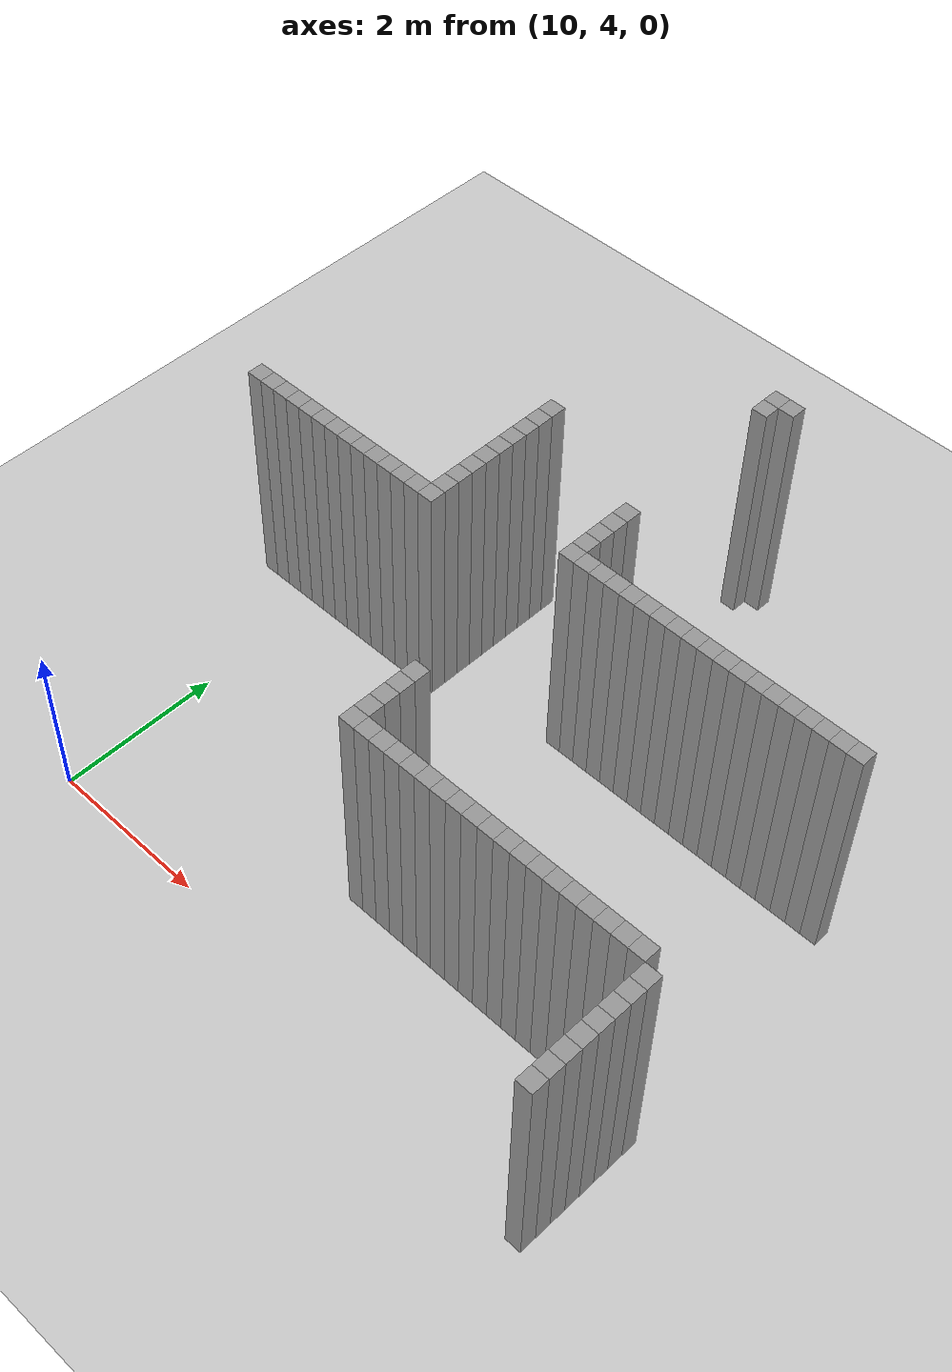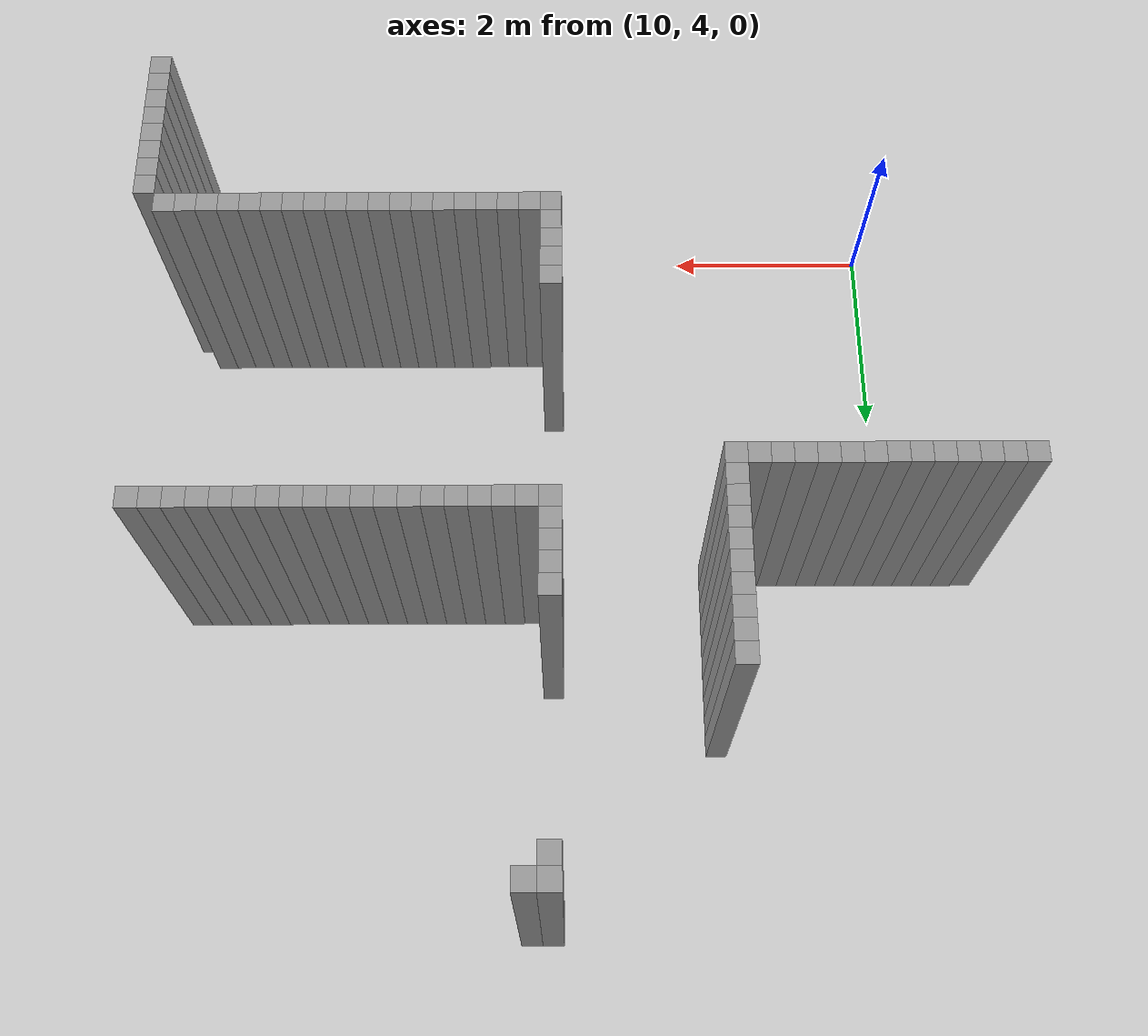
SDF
<sdf version="1.7">
 <world name="default">
  <model name="ground_plane">
   <static>1</static>
   <link name="link">
    <collision name="collision">
     <geometry><plane><normal>0 0 1</normal><size>100 100</size></plane></geometry>
     <surface>
      <contact><collide_bitmask>65535</collide_bitmask></contact>
      <friction><ode><mu>100</mu><mu2>50</mu2></ode></friction>
     </surface>
    </collision>
    <visual name="visual">
     <cast_shadows>0</cast_shadows>
     <geometry><plane><normal>0 0 1</normal><size>100 100</size></plane></geometry>
     <material>
      <script><uri>file://media/materials/scripts/gazebo.material</uri><name>Gazebo/Grey</name></script>
     </material>
    </visual>
   </link>
  </model>
  <model name="05222">
   <pose>-1 -1 0 0 -0 0</pose>
   <link name="Wall_288">
    <collision name="Wall_288_Collision">
     <geometry><box><size>0.2 0.2 3</size></box></geometry>
     <pose>0 0 1.5 0 -0 0</pose>
    </collision>
    <visual name="Wall_288_Visual">
     <pose>0 0 1.5 0 -0 0</pose>
     <geometry><box><size>0.2 0.2 3</size></box></geometry>
     <material>
      <script><uri>file://media/materials/scripts/gazebo.material</uri><name>Gazebo/Grey</name></script>
      <ambient>1 1 1 1</ambient>
     </material>
     <meta><layer>0</layer></meta>
    </visual>
    <pose>18.2 4.6000000000000005 0 0 -0 0</pose>
   </link>
   <link name="Wall_291">
    <collision name="Wall_291_Collision">
     <geometry><box><size>0.2 0.2 3</size></box></geometry>
     <pose>0 0 1.5 0 -0 0</pose>
    </collision>
    <visual name="Wall_291_Visual">
     <pose>0 0 1.5 0 -0 0</pose>
     <geometry><box><size>0.2 0.2 3</size></box></geometry>
     <material>
      <script><uri>file://media/materials/scripts/gazebo.material</uri><name>Gazebo/Grey</name></script>
      <ambient>1 1 1 1</ambient>
     </material>
     <meta><layer>0</layer></meta>
    </visual>
    <pose>18.2 4.800000000000001 0 0 -0 0</pose>
   </link>
   <link name="Wall_294">
    <collision name="Wall_294_Collision">
     <geometry><box><size>0.2 0.2 3</size></box></geometry>
     <pose>0 0 1.5 0 -0 0</pose>
    </collision>
    <visual name="Wall_294_Visual">
     <pose>0 0 1.5 0 -0 0</pose>
     <geometry><box><size>0.2 0.2 3</size></box></geometry>
     <material>
      <script><uri>file://media/materials/scripts/gazebo.material</uri><name>Gazebo/Grey</name></script>
      <ambient>1 1 1 1</ambient>
     </material>
     <meta><layer>0</layer></meta>
    </visual>
    <pose>18.2 5.0 0 0 -0 0</pose>
   </link>
   <link name="Wall_297">
    <collision name="Wall_297_Collision">
     <geometry><box><size>0.2 0.2 3</size></box></geometry>
     <pose>0 0 1.5 0 -0 0</pose>
    </collision>
    <visual name="Wall_297_Visual">
     <pose>0 0 1.5 0 -0 0</pose>
     <geometry><box><size>0.2 0.2 3</size></box></geometry>
     <material>
      <script><uri>file://media/materials/scripts/gazebo.material</uri><name>Gazebo/Grey</name></script>
      <ambient>1 1 1 1</ambient>
     </material>
     <meta><layer>0</layer></meta>
    </visual>
    <pose>18.2 5.2 0 0 -0 0</pose>
   </link>
   <link name="Wall_300">
    <collision name="Wall_300_Collision">
     <geometry><box><size>0.2 0.2 3</size></box></geometry>
     <pose>0 0 1.5 0 -0 0</pose>
    </collision>
    <visual name="Wall_300_Visual">
     <pose>0 0 1.5 0 -0 0</pose>
     <geometry><box><size>0.2 0.2 3</size></box></geometry>
     <material>
      <script><uri>file://media/materials/scripts/gazebo.material</uri><name>Gazebo/Grey</name></script>
      <ambient>1 1 1 1</ambient>
     </material>
     <meta><layer>0</layer></meta>
    </visual>
    <pose>18.2 5.4 0 0 -0 0</pose>
   </link>
   <link name="Wall_302">
    <collision name="Wall_302_Collision">
     <geometry><box><size>0.2 0.2 3</size></box></geometry>
     <pose>0 0 1.5 0 -0 0</pose>
    </collision>
    <visual name="Wall_302_Visual">
     <pose>0 0 1.5 0 -0 0</pose>
     <geometry><box><size>0.2 0.2 3</size></box></geometry>
     <material>
      <script><uri>file://media/materials/scripts/gazebo.material</uri><name>Gazebo/Grey</name></script>
      <ambient>1 1 1 1</ambient>
     </material>
     <meta><layer>0</layer></meta>
    </visual>
    <pose>18.2 5.6000000000000005 0 0 -0 0</pose>
   </link>
   <link name="Wall_304">
    <collision name="Wall_304_Collision">
     <geometry><box><size>0.2 0.2 3</size></box></geometry>
     <pose>0 0 1.5 0 -0 0</pose>
    </collision>
    <visual name="Wall_304_Visual">
     <pose>0 0 1.5 0 -0 0</pose>
     <geometry><box><size>0.2 0.2 3</size></box></geometry>
     <material>
      <script><uri>file://media/materials/scripts/gazebo.material</uri><name>Gazebo/Grey</name></script>
      <ambient>1 1 1 1</ambient>
     </material>
     <meta><layer>0</layer></meta>
    </visual>
    <pose>18.2 5.800000000000001 0 0 -0 0</pose>
   </link>
   <link name="Wall_306">
    <collision name="Wall_306_Collision">
     <geometry><box><size>0.2 0.2 3</size></box></geometry>
     <pose>0 0 1.5 0 -0 0</pose>
    </collision>
    <visual name="Wall_306_Visual">
     <pose>0 0 1.5 0 -0 0</pose>
     <geometry><box><size>0.2 0.2 3</size></box></geometry>
     <material>
      <script><uri>file://media/materials/scripts/gazebo.material</uri><name>Gazebo/Grey</name></script>
      <ambient>1 1 1 1</ambient>
     </material>
     <meta><layer>0</layer></meta>
    </visual>
    <pose>18.2 6.0 0 0 -0 0</pose>
   </link>
   <link name="Wall_309">
    <collision name="Wall_309_Collision">
     <geometry><box><size>0.2 0.2 3</size></box></geometry>
     <pose>0 0 1.5 0 -0 0</pose>
    </collision>
    <visual name="Wall_309_Visual">
     <pose>0 0 1.5 0 -0 0</pose>
     <geometry><box><size>0.2 0.2 3</size></box></geometry>
     <material>
      <script><uri>file://media/materials/scripts/gazebo.material</uri><name>Gazebo/Grey</name></script>
      <ambient>1 1 1 1</ambient>
     </material>
     <meta><layer>0</layer></meta>
    </visual>
    <pose>14.4 6.2 0 0 -0 0</pose>
   </link>
   <link name="Wall_310">
    <collision name="Wall_310_Collision">
     <geometry><box><size>0.2 0.2 3</size></box></geometry>
     <pose>0 0 1.5 0 -0 0</pose>
    </collision>
    <visual name="Wall_310_Visual">
     <pose>0 0 1.5 0 -0 0</pose>
     <geometry><box><size>0.2 0.2 3</size></box></geometry>
     <material>
      <script><uri>file://media/materials/scripts/gazebo.material</uri><name>Gazebo/Grey</name></script>
      <ambient>1 1 1 1</ambient>
     </material>
     <meta><layer>0</layer></meta>
    </visual>
    <pose>14.600000000000001 6.2 0 0 -0 0</pose>
   </link>
   <link name="Wall_311">
    <collision name="Wall_311_Collision">
     <geometry><box><size>0.2 0.2 3</size></box></geometry>
     <pose>0 0 1.5 0 -0 0</pose>
    </collision>
    <visual name="Wall_311_Visual">
     <pose>0 0 1.5 0 -0 0</pose>
     <geometry><box><size>0.2 0.2 3</size></box></geometry>
     <material>
      <script><uri>file://media/materials/scripts/gazebo.material</uri><name>Gazebo/Grey</name></script>
      <ambient>1 1 1 1</ambient>
     </material>
     <meta><layer>0</layer></meta>
    </visual>
    <pose>14.8 6.2 0 0 -0 0</pose>
   </link>
   <link name="Wall_312">
    <collision name="Wall_312_Collision">
     <geometry><box><size>0.2 0.2 3</size></box></geometry>
     <pose>0 0 1.5 0 -0 0</pose>
    </collision>
    <visual name="Wall_312_Visual">
     <pose>0 0 1.5 0 -0 0</pose>
     <geometry><box><size>0.2 0.2 3</size></box></geometry>
     <material>
      <script><uri>file://media/materials/scripts/gazebo.material</uri><name>Gazebo/Grey</name></script>
      <ambient>1 1 1 1</ambient>
     </material>
     <meta><layer>0</layer></meta>
    </visual>
    <pose>15.0 6.2 0 0 -0 0</pose>
   </link>
   <link name="Wall_313">
    <collision name="Wall_313_Collision">
     <geometry><box><size>0.2 0.2 3</size></box></geometry>
     <pose>0 0 1.5 0 -0 0</pose>
    </collision>
    <visual name="Wall_313_Visual">
     <pose>0 0 1.5 0 -0 0</pose>
     <geometry><box><size>0.2 0.2 3</size></box></geometry>
     <material>
      <script><uri>file://media/materials/scripts/gazebo.material</uri><name>Gazebo/Grey</name></script>
      <ambient>1 1 1 1</ambient>
     </material>
     <meta><layer>0</layer></meta>
    </visual>
    <pose>15.200000000000001 6.2 0 0 -0 0</pose>
   </link>
   <link name="Wall_314">
    <collision name="Wall_314_Collision">
     <geometry><box><size>0.2 0.2 3</size></box></geometry>
     <pose>0 0 1.5 0 -0 0</pose>
    </collision>
    <visual name="Wall_314_Visual">
     <pose>0 0 1.5 0 -0 0</pose>
     <geometry><box><size>0.2 0.2 3</size></box></geometry>
     <material>
      <script><uri>file://media/materials/scripts/gazebo.material</uri><name>Gazebo/Grey</name></script>
      <ambient>1 1 1 1</ambient>
     </material>
     <meta><layer>0</layer></meta>
    </visual>
    <pose>15.4 6.2 0 0 -0 0</pose>
   </link>
   <link name="Wall_315">
    <collision name="Wall_315_Collision">
     <geometry><box><size>0.2 0.2 3</size></box></geometry>
     <pose>0 0 1.5 0 -0 0</pose>
    </collision>
    <visual name="Wall_315_Visual">
     <pose>0 0 1.5 0 -0 0</pose>
     <geometry><box><size>0.2 0.2 3</size></box></geometry>
     <material>
      <script><uri>file://media/materials/scripts/gazebo.material</uri><name>Gazebo/Grey</name></script>
      <ambient>1 1 1 1</ambient>
     </material>
     <meta><layer>0</layer></meta>
    </visual>
    <pose>15.600000000000001 6.2 0 0 -0 0</pose>
   </link>
   <link name="Wall_316">
    <collision name="Wall_316_Collision">
     <geometry><box><size>0.2 0.2 3</size></box></geometry>
     <pose>0 0 1.5 0 -0 0</pose>
    </collision>
    <visual name="Wall_316_Visual">
     <pose>0 0 1.5 0 -0 0</pose>
     <geometry><box><size>0.2 0.2 3</size></box></geometry>
     <material>
      <script><uri>file://media/materials/scripts/gazebo.material</uri><name>Gazebo/Grey</name></script>
      <ambient>1 1 1 1</ambient>
     </material>
     <meta><layer>0</layer></meta>
    </visual>
    <pose>15.8 6.2 0 0 -0 0</pose>
   </link>
   <link name="Wall_317">
    <collision name="Wall_317_Collision">
     <geometry><box><size>0.2 0.2 3</size></box></geometry>
     <pose>0 0 1.5 0 -0 0</pose>
    </collision>
    <visual name="Wall_317_Visual">
     <pose>0 0 1.5 0 -0 0</pose>
     <geometry><box><size>0.2 0.2 3</size></box></geometry>
     <material>
      <script><uri>file://media/materials/scripts/gazebo.material</uri><name>Gazebo/Grey</name></script>
      <ambient>1 1 1 1</ambient>
     </material>
     <meta><layer>0</layer></meta>
    </visual>
    <pose>16.0 6.2 0 0 -0 0</pose>
   </link>
   <link name="Wall_318">
    <collision name="Wall_318_Collision">
     <geometry><box><size>0.2 0.2 3</size></box></geometry>
     <pose>0 0 1.5 0 -0 0</pose>
    </collision>
    <visual name="Wall_318_Visual">
     <pose>0 0 1.5 0 -0 0</pose>
     <geometry><box><size>0.2 0.2 3</size></box></geometry>
     <material>
      <script><uri>file://media/materials/scripts/gazebo.material</uri><name>Gazebo/Grey</name></script>
      <ambient>1 1 1 1</ambient>
     </material>
     <meta><layer>0</layer></meta>
    </visual>
    <pose>16.2 6.2 0 0 -0 0</pose>
   </link>
   <link name="Wall_319">
    <collision name="Wall_319_Collision">
     <geometry><box><size>0.2 0.2 3</size></box></geometry>
     <pose>0 0 1.5 0 -0 0</pose>
    </collision>
    <visual name="Wall_319_Visual">
     <pose>0 0 1.5 0 -0 0</pose>
     <geometry><box><size>0.2 0.2 3</size></box></geometry>
     <material>
      <script><uri>file://media/materials/scripts/gazebo.material</uri><name>Gazebo/Grey</name></script>
      <ambient>1 1 1 1</ambient>
     </material>
     <meta><layer>0</layer></meta>
    </visual>
    <pose>16.400000000000002 6.2 0 0 -0 0</pose>
   </link>
   <link name="Wall_320">
    <collision name="Wall_320_Collision">
     <geometry><box><size>0.2 0.2 3</size></box></geometry>
     <pose>0 0 1.5 0 -0 0</pose>
    </collision>
    <visual name="Wall_320_Visual">
     <pose>0 0 1.5 0 -0 0</pose>
     <geometry><box><size>0.2 0.2 3</size></box></geometry>
     <material>
      <script><uri>file://media/materials/scripts/gazebo.material</uri><name>Gazebo/Grey</name></script>
      <ambient>1 1 1 1</ambient>
     </material>
     <meta><layer>0</layer></meta>
    </visual>
    <pose>16.6 6.2 0 0 -0 0</pose>
   </link>
   <link name="Wall_321">
    <collision name="Wall_321_Collision">
     <geometry><box><size>0.2 0.2 3</size></box></geometry>
     <pose>0 0 1.5 0 -0 0</pose>
    </collision>
    <visual name="Wall_321_Visual">
     <pose>0 0 1.5 0 -0 0</pose>
     <geometry><box><size>0.2 0.2 3</size></box></geometry>
     <material>
      <script><uri>file://media/materials/scripts/gazebo.material</uri><name>Gazebo/Grey</name></script>
      <ambient>1 1 1 1</ambient>
     </material>
     <meta><layer>0</layer></meta>
    </visual>
    <pose>16.8 6.2 0 0 -0 0</pose>
   </link>
   <link name="Wall_322">
    <collision name="Wall_322_Collision">
     <geometry><box><size>0.2 0.2 3</size></box></geometry>
     <pose>0 0 1.5 0 -0 0</pose>
    </collision>
    <visual name="Wall_322_Visual">
     <pose>0 0 1.5 0 -0 0</pose>
     <geometry><box><size>0.2 0.2 3</size></box></geometry>
     <material>
      <script><uri>file://media/materials/scripts/gazebo.material</uri><name>Gazebo/Grey</name></script>
      <ambient>1 1 1 1</ambient>
     </material>
     <meta><layer>0</layer></meta>
    </visual>
    <pose>17.0 6.2 0 0 -0 0</pose>
   </link>
   <link name="Wall_323">
    <collision name="Wall_323_Collision">
     <geometry><box><size>0.2 0.2 3</size></box></geometry>
     <pose>0 0 1.5 0 -0 0</pose>
    </collision>
    <visual name="Wall_323_Visual">
     <pose>0 0 1.5 0 -0 0</pose>
     <geometry><box><size>0.2 0.2 3</size></box></geometry>
     <material>
      <script><uri>file://media/materials/scripts/gazebo.material</uri><name>Gazebo/Grey</name></script>
      <ambient>1 1 1 1</ambient>
     </material>
     <meta><layer>0</layer></meta>
    </visual>
    <pose>17.2 6.2 0 0 -0 0</pose>
   </link>
   <link name="Wall_324">
    <collision name="Wall_324_Collision">
     <geometry><box><size>0.2 0.2 3</size></box></geometry>
     <pose>0 0 1.5 0 -0 0</pose>
    </collision>
    <visual name="Wall_324_Visual">
     <pose>0 0 1.5 0 -0 0</pose>
     <geometry><box><size>0.2 0.2 3</size></box></geometry>
     <material>
      <script><uri>file://media/materials/scripts/gazebo.material</uri><name>Gazebo/Grey</name></script>
      <ambient>1 1 1 1</ambient>
     </material>
     <meta><layer>0</layer></meta>
    </visual>
    <pose>17.400000000000002 6.2 0 0 -0 0</pose>
   </link>
   <link name="Wall_325">
    <collision name="Wall_325_Collision">
     <geometry><box><size>0.2 0.2 3</size></box></geometry>
     <pose>0 0 1.5 0 -0 0</pose>
    </collision>
    <visual name="Wall_325_Visual">
     <pose>0 0 1.5 0 -0 0</pose>
     <geometry><box><size>0.2 0.2 3</size></box></geometry>
     <material>
      <script><uri>file://media/materials/scripts/gazebo.material</uri><name>Gazebo/Grey</name></script>
      <ambient>1 1 1 1</ambient>
     </material>
     <meta><layer>0</layer></meta>
    </visual>
    <pose>17.6 6.2 0 0 -0 0</pose>
   </link>
   <link name="Wall_326">
    <collision name="Wall_326_Collision">
     <geometry><box><size>0.2 0.2 3</size></box></geometry>
     <pose>0 0 1.5 0 -0 0</pose>
    </collision>
    <visual name="Wall_326_Visual">
     <pose>0 0 1.5 0 -0 0</pose>
     <geometry><box><size>0.2 0.2 3</size></box></geometry>
     <material>
      <script><uri>file://media/materials/scripts/gazebo.material</uri><name>Gazebo/Grey</name></script>
      <ambient>1 1 1 1</ambient>
     </material>
     <meta><layer>0</layer></meta>
    </visual>
    <pose>17.8 6.2 0 0 -0 0</pose>
   </link>
   <link name="Wall_327">
    <collision name="Wall_327_Collision">
     <geometry><box><size>0.2 0.2 3</size></box></geometry>
     <pose>0 0 1.5 0 -0 0</pose>
    </collision>
    <visual name="Wall_327_Visual">
     <pose>0 0 1.5 0 -0 0</pose>
     <geometry><box><size>0.2 0.2 3</size></box></geometry>
     <material>
      <script><uri>file://media/materials/scripts/gazebo.material</uri><name>Gazebo/Grey</name></script>
      <ambient>1 1 1 1</ambient>
     </material>
     <meta><layer>0</layer></meta>
    </visual>
    <pose>18.0 6.2 0 0 -0 0</pose>
   </link>
   <link name="Wall_331">
    <collision name="Wall_331_Collision">
     <geometry><box><size>0.2 0.2 3</size></box></geometry>
     <pose>0 0 1.5 0 -0 0</pose>
    </collision>
    <visual name="Wall_331_Visual">
     <pose>0 0 1.5 0 -0 0</pose>
     <geometry><box><size>0.2 0.2 3</size></box></geometry>
     <material>
      <script><uri>file://media/materials/scripts/gazebo.material</uri><name>Gazebo/Grey</name></script>
      <ambient>1 1 1 1</ambient>
     </material>
     <meta><layer>0</layer></meta>
    </visual>
    <pose>14.4 6.4 0 0 -0 0</pose>
   </link>
   <link name="Wall_335">
    <collision name="Wall_335_Collision">
     <geometry><box><size>0.2 0.2 3</size></box></geometry>
     <pose>0 0 1.5 0 -0 0</pose>
    </collision>
    <visual name="Wall_335_Visual">
     <pose>0 0 1.5 0 -0 0</pose>
     <geometry><box><size>0.2 0.2 3</size></box></geometry>
     <material>
      <script><uri>file://media/materials/scripts/gazebo.material</uri><name>Gazebo/Grey</name></script>
      <ambient>1 1 1 1</ambient>
     </material>
     <meta><layer>0</layer></meta>
    </visual>
    <pose>14.4 6.6000000000000005 0 0 -0 0</pose>
   </link>
   <link name="Wall_339">
    <collision name="Wall_339_Collision">
     <geometry><box><size>0.2 0.2 3</size></box></geometry>
     <pose>0 0 1.5 0 -0 0</pose>
    </collision>
    <visual name="Wall_339_Visual">
     <pose>0 0 1.5 0 -0 0</pose>
     <geometry><box><size>0.2 0.2 3</size></box></geometry>
     <material>
      <script><uri>file://media/materials/scripts/gazebo.material</uri><name>Gazebo/Grey</name></script>
      <ambient>1 1 1 1</ambient>
     </material>
     <meta><layer>0</layer></meta>
    </visual>
    <pose>14.4 6.800000000000001 0 0 -0 0</pose>
   </link>
   <link name="Wall_344">
    <collision name="Wall_344_Collision">
     <geometry><box><size>0.2 0.2 3</size></box></geometry>
     <pose>0 0 1.5 0 -0 0</pose>
    </collision>
    <visual name="Wall_344_Visual">
     <pose>0 0 1.5 0 -0 0</pose>
     <geometry><box><size>0.2 0.2 3</size></box></geometry>
     <material>
      <script><uri>file://media/materials/scripts/gazebo.material</uri><name>Gazebo/Grey</name></script>
      <ambient>1 1 1 1</ambient>
     </material>
     <meta><layer>0</layer></meta>
    </visual>
    <pose>14.4 7.0 0 0 -0 0</pose>
   </link>
   <link name="Wall_404">
    <collision name="Wall_404_Collision">
     <geometry><box><size>0.2 0.2 3</size></box></geometry>
     <pose>0 0 1.5 0 -0 0</pose>
    </collision>
    <visual name="Wall_404_Visual">
     <pose>0 0 1.5 0 -0 0</pose>
     <geometry><box><size>0.2 0.2 3</size></box></geometry>
     <material>
      <script><uri>file://media/materials/scripts/gazebo.material</uri><name>Gazebo/Grey</name></script>
      <ambient>1 1 1 1</ambient>
     </material>
     <meta><layer>0</layer></meta>
    </visual>
    <pose>10.200000000000001 8.8 0 0 -0 0</pose>
   </link>
   <link name="Wall_405">
    <collision name="Wall_405_Collision">
     <geometry><box><size>0.2 0.2 3</size></box></geometry>
     <pose>0 0 1.5 0 -0 0</pose>
    </collision>
    <visual name="Wall_405_Visual">
     <pose>0 0 1.5 0 -0 0</pose>
     <geometry><box><size>0.2 0.2 3</size></box></geometry>
     <material>
      <script><uri>file://media/materials/scripts/gazebo.material</uri><name>Gazebo/Grey</name></script>
      <ambient>1 1 1 1</ambient>
     </material>
     <meta><layer>0</layer></meta>
    </visual>
    <pose>10.4 8.8 0 0 -0 0</pose>
   </link>
   <link name="Wall_406">
    <collision name="Wall_406_Collision">
     <geometry><box><size>0.2 0.2 3</size></box></geometry>
     <pose>0 0 1.5 0 -0 0</pose>
    </collision>
    <visual name="Wall_406_Visual">
     <pose>0 0 1.5 0 -0 0</pose>
     <geometry><box><size>0.2 0.2 3</size></box></geometry>
     <material>
      <script><uri>file://media/materials/scripts/gazebo.material</uri><name>Gazebo/Grey</name></script>
      <ambient>1 1 1 1</ambient>
     </material>
     <meta><layer>0</layer></meta>
    </visual>
    <pose>10.600000000000001 8.8 0 0 -0 0</pose>
   </link>
   <link name="Wall_407">
    <collision name="Wall_407_Collision">
     <geometry><box><size>0.2 0.2 3</size></box></geometry>
     <pose>0 0 1.5 0 -0 0</pose>
    </collision>
    <visual name="Wall_407_Visual">
     <pose>0 0 1.5 0 -0 0</pose>
     <geometry><box><size>0.2 0.2 3</size></box></geometry>
     <material>
      <script><uri>file://media/materials/scripts/gazebo.material</uri><name>Gazebo/Grey</name></script>
      <ambient>1 1 1 1</ambient>
     </material>
     <meta><layer>0</layer></meta>
    </visual>
    <pose>10.8 8.8 0 0 -0 0</pose>
   </link>
   <link name="Wall_408">
    <collision name="Wall_408_Collision">
     <geometry><box><size>0.2 0.2 3</size></box></geometry>
     <pose>0 0 1.5 0 -0 0</pose>
    </collision>
    <visual name="Wall_408_Visual">
     <pose>0 0 1.5 0 -0 0</pose>
     <geometry><box><size>0.2 0.2 3</size></box></geometry>
     <material>
      <script><uri>file://media/materials/scripts/gazebo.material</uri><name>Gazebo/Grey</name></script>
      <ambient>1 1 1 1</ambient>
     </material>
     <meta><layer>0</layer></meta>
    </visual>
    <pose>11.0 8.8 0 0 -0 0</pose>
   </link>
   <link name="Wall_409">
    <collision name="Wall_409_Collision">
     <geometry><box><size>0.2 0.2 3</size></box></geometry>
     <pose>0 0 1.5 0 -0 0</pose>
    </collision>
    <visual name="Wall_409_Visual">
     <pose>0 0 1.5 0 -0 0</pose>
     <geometry><box><size>0.2 0.2 3</size></box></geometry>
     <material>
      <script><uri>file://media/materials/scripts/gazebo.material</uri><name>Gazebo/Grey</name></script>
      <ambient>1 1 1 1</ambient>
     </material>
     <meta><layer>0</layer></meta>
    </visual>
    <pose>11.200000000000001 8.8 0 0 -0 0</pose>
   </link>
   <link name="Wall_410">
    <collision name="Wall_410_Collision">
     <geometry><box><size>0.2 0.2 3</size></box></geometry>
     <pose>0 0 1.5 0 -0 0</pose>
    </collision>
    <visual name="Wall_410_Visual">
     <pose>0 0 1.5 0 -0 0</pose>
     <geometry><box><size>0.2 0.2 3</size></box></geometry>
     <material>
      <script><uri>file://media/materials/scripts/gazebo.material</uri><name>Gazebo/Grey</name></script>
      <ambient>1 1 1 1</ambient>
     </material>
     <meta><layer>0</layer></meta>
    </visual>
    <pose>11.4 8.8 0 0 -0 0</pose>
   </link>
   <link name="Wall_411">
    <collision name="Wall_411_Collision">
     <geometry><box><size>0.2 0.2 3</size></box></geometry>
     <pose>0 0 1.5 0 -0 0</pose>
    </collision>
    <visual name="Wall_411_Visual">
     <pose>0 0 1.5 0 -0 0</pose>
     <geometry><box><size>0.2 0.2 3</size></box></geometry>
     <material>
      <script><uri>file://media/materials/scripts/gazebo.material</uri><name>Gazebo/Grey</name></script>
      <ambient>1 1 1 1</ambient>
     </material>
     <meta><layer>0</layer></meta>
    </visual>
    <pose>11.600000000000001 8.8 0 0 -0 0</pose>
   </link>
   <link name="Wall_412">
    <collision name="Wall_412_Collision">
     <geometry><box><size>0.2 0.2 3</size></box></geometry>
     <pose>0 0 1.5 0 -0 0</pose>
    </collision>
    <visual name="Wall_412_Visual">
     <pose>0 0 1.5 0 -0 0</pose>
     <geometry><box><size>0.2 0.2 3</size></box></geometry>
     <material>
      <script><uri>file://media/materials/scripts/gazebo.material</uri><name>Gazebo/Grey</name></script>
      <ambient>1 1 1 1</ambient>
     </material>
     <meta><layer>0</layer></meta>
    </visual>
    <pose>11.8 8.8 0 0 -0 0</pose>
   </link>
   <link name="Wall_413">
    <collision name="Wall_413_Collision">
     <geometry><box><size>0.2 0.2 3</size></box></geometry>
     <pose>0 0 1.5 0 -0 0</pose>
    </collision>
    <visual name="Wall_413_Visual">
     <pose>0 0 1.5 0 -0 0</pose>
     <geometry><box><size>0.2 0.2 3</size></box></geometry>
     <material>
      <script><uri>file://media/materials/scripts/gazebo.material</uri><name>Gazebo/Grey</name></script>
      <ambient>1 1 1 1</ambient>
     </material>
     <meta><layer>0</layer></meta>
    </visual>
    <pose>12.0 8.8 0 0 -0 0</pose>
   </link>
   <link name="Wall_414">
    <collision name="Wall_414_Collision">
     <geometry><box><size>0.2 0.2 3</size></box></geometry>
     <pose>0 0 1.5 0 -0 0</pose>
    </collision>
    <visual name="Wall_414_Visual">
     <pose>0 0 1.5 0 -0 0</pose>
     <geometry><box><size>0.2 0.2 3</size></box></geometry>
     <material>
      <script><uri>file://media/materials/scripts/gazebo.material</uri><name>Gazebo/Grey</name></script>
      <ambient>1 1 1 1</ambient>
     </material>
     <meta><layer>0</layer></meta>
    </visual>
    <pose>12.200000000000001 8.8 0 0 -0 0</pose>
   </link>
   <link name="Wall_415">
    <collision name="Wall_415_Collision">
     <geometry><box><size>0.2 0.2 3</size></box></geometry>
     <pose>0 0 1.5 0 -0 0</pose>
    </collision>
    <visual name="Wall_415_Visual">
     <pose>0 0 1.5 0 -0 0</pose>
     <geometry><box><size>0.2 0.2 3</size></box></geometry>
     <material>
      <script><uri>file://media/materials/scripts/gazebo.material</uri><name>Gazebo/Grey</name></script>
      <ambient>1 1 1 1</ambient>
     </material>
     <meta><layer>0</layer></meta>
    </visual>
    <pose>12.4 8.8 0 0 -0 0</pose>
   </link>
   <link name="Wall_416">
    <collision name="Wall_416_Collision">
     <geometry><box><size>0.2 0.2 3</size></box></geometry>
     <pose>0 0 1.5 0 -0 0</pose>
    </collision>
    <visual name="Wall_416_Visual">
     <pose>0 0 1.5 0 -0 0</pose>
     <geometry><box><size>0.2 0.2 3</size></box></geometry>
     <material>
      <script><uri>file://media/materials/scripts/gazebo.material</uri><name>Gazebo/Grey</name></script>
      <ambient>1 1 1 1</ambient>
     </material>
     <meta><layer>0</layer></meta>
    </visual>
    <pose>12.600000000000001 8.8 0 0 -0 0</pose>
   </link>
   <link name="Wall_417">
    <collision name="Wall_417_Collision">
     <geometry><box><size>0.2 0.2 3</size></box></geometry>
     <pose>0 0 1.5 0 -0 0</pose>
    </collision>
    <visual name="Wall_417_Visual">
     <pose>0 0 1.5 0 -0 0</pose>
     <geometry><box><size>0.2 0.2 3</size></box></geometry>
     <material>
      <script><uri>file://media/materials/scripts/gazebo.material</uri><name>Gazebo/Grey</name></script>
      <ambient>1 1 1 1</ambient>
     </material>
     <meta><layer>0</layer></meta>
    </visual>
    <pose>12.8 8.8 0 0 -0 0</pose>
   </link>
   <link name="Wall_441">
    <collision name="Wall_441_Collision">
     <geometry><box><size>0.2 0.2 3</size></box></geometry>
     <pose>0 0 1.5 0 -0 0</pose>
    </collision>
    <visual name="Wall_441_Visual">
     <pose>0 0 1.5 0 -0 0</pose>
     <geometry><box><size>0.2 0.2 3</size></box></geometry>
     <material>
      <script><uri>file://media/materials/scripts/gazebo.material</uri><name>Gazebo/Grey</name></script>
      <ambient>1 1 1 1</ambient>
     </material>
     <meta><layer>0</layer></meta>
    </visual>
    <pose>12.8 9.0 0 0 -0 0</pose>
   </link>
   <link name="Wall_447">
    <collision name="Wall_447_Collision">
     <geometry><box><size>0.2 0.2 3</size></box></geometry>
     <pose>0 0 1.5 0 -0 0</pose>
    </collision>
    <visual name="Wall_447_Visual">
     <pose>0 0 1.5 0 -0 0</pose>
     <geometry><box><size>0.2 0.2 3</size></box></geometry>
     <material>
      <script><uri>file://media/materials/scripts/gazebo.material</uri><name>Gazebo/Grey</name></script>
      <ambient>1 1 1 1</ambient>
     </material>
     <meta><layer>0</layer></meta>
    </visual>
    <pose>12.8 9.200000000000001 0 0 -0 0</pose>
   </link>
   <link name="Wall_448">
    <collision name="Wall_448_Collision">
     <geometry><box><size>0.2 0.2 3</size></box></geometry>
     <pose>0 0 1.5 0 -0 0</pose>
    </collision>
    <visual name="Wall_448_Visual">
     <pose>0 0 1.5 0 -0 0</pose>
     <geometry><box><size>0.2 0.2 3</size></box></geometry>
     <material>
      <script><uri>file://media/materials/scripts/gazebo.material</uri><name>Gazebo/Grey</name></script>
      <ambient>1 1 1 1</ambient>
     </material>
     <meta><layer>0</layer></meta>
    </visual>
    <pose>14.4 9.200000000000001 0 0 -0 0</pose>
   </link>
   <link name="Wall_449">
    <collision name="Wall_449_Collision">
     <geometry><box><size>0.2 0.2 3</size></box></geometry>
     <pose>0 0 1.5 0 -0 0</pose>
    </collision>
    <visual name="Wall_449_Visual">
     <pose>0 0 1.5 0 -0 0</pose>
     <geometry><box><size>0.2 0.2 3</size></box></geometry>
     <material>
      <script><uri>file://media/materials/scripts/gazebo.material</uri><name>Gazebo/Grey</name></script>
      <ambient>1 1 1 1</ambient>
     </material>
     <meta><layer>0</layer></meta>
    </visual>
    <pose>14.600000000000001 9.200000000000001 0 0 -0 0</pose>
   </link>
   <link name="Wall_450">
    <collision name="Wall_450_Collision">
     <geometry><box><size>0.2 0.2 3</size></box></geometry>
     <pose>0 0 1.5 0 -0 0</pose>
    </collision>
    <visual name="Wall_450_Visual">
     <pose>0 0 1.5 0 -0 0</pose>
     <geometry><box><size>0.2 0.2 3</size></box></geometry>
     <material>
      <script><uri>file://media/materials/scripts/gazebo.material</uri><name>Gazebo/Grey</name></script>
      <ambient>1 1 1 1</ambient>
     </material>
     <meta><layer>0</layer></meta>
    </visual>
    <pose>14.8 9.200000000000001 0 0 -0 0</pose>
   </link>
   <link name="Wall_451">
    <collision name="Wall_451_Collision">
     <geometry><box><size>0.2 0.2 3</size></box></geometry>
     <pose>0 0 1.5 0 -0 0</pose>
    </collision>
    <visual name="Wall_451_Visual">
     <pose>0 0 1.5 0 -0 0</pose>
     <geometry><box><size>0.2 0.2 3</size></box></geometry>
     <material>
      <script><uri>file://media/materials/scripts/gazebo.material</uri><name>Gazebo/Grey</name></script>
      <ambient>1 1 1 1</ambient>
     </material>
     <meta><layer>0</layer></meta>
    </visual>
    <pose>15.0 9.200000000000001 0 0 -0 0</pose>
   </link>
   <link name="Wall_452">
    <collision name="Wall_452_Collision">
     <geometry><box><size>0.2 0.2 3</size></box></geometry>
     <pose>0 0 1.5 0 -0 0</pose>
    </collision>
    <visual name="Wall_452_Visual">
     <pose>0 0 1.5 0 -0 0</pose>
     <geometry><box><size>0.2 0.2 3</size></box></geometry>
     <material>
      <script><uri>file://media/materials/scripts/gazebo.material</uri><name>Gazebo/Grey</name></script>
      <ambient>1 1 1 1</ambient>
     </material>
     <meta><layer>0</layer></meta>
    </visual>
    <pose>15.200000000000001 9.200000000000001 0 0 -0 0</pose>
   </link>
   <link name="Wall_453">
    <collision name="Wall_453_Collision">
     <geometry><box><size>0.2 0.2 3</size></box></geometry>
     <pose>0 0 1.5 0 -0 0</pose>
    </collision>
    <visual name="Wall_453_Visual">
     <pose>0 0 1.5 0 -0 0</pose>
     <geometry><box><size>0.2 0.2 3</size></box></geometry>
     <material>
      <script><uri>file://media/materials/scripts/gazebo.material</uri><name>Gazebo/Grey</name></script>
      <ambient>1 1 1 1</ambient>
     </material>
     <meta><layer>0</layer></meta>
    </visual>
    <pose>15.4 9.200000000000001 0 0 -0 0</pose>
   </link>
   <link name="Wall_454">
    <collision name="Wall_454_Collision">
     <geometry><box><size>0.2 0.2 3</size></box></geometry>
     <pose>0 0 1.5 0 -0 0</pose>
    </collision>
    <visual name="Wall_454_Visual">
     <pose>0 0 1.5 0 -0 0</pose>
     <geometry><box><size>0.2 0.2 3</size></box></geometry>
     <material>
      <script><uri>file://media/materials/scripts/gazebo.material</uri><name>Gazebo/Grey</name></script>
      <ambient>1 1 1 1</ambient>
     </material>
     <meta><layer>0</layer></meta>
    </visual>
    <pose>15.600000000000001 9.200000000000001 0 0 -0 0</pose>
   </link>
   <link name="Wall_455">
    <collision name="Wall_455_Collision">
     <geometry><box><size>0.2 0.2 3</size></box></geometry>
     <pose>0 0 1.5 0 -0 0</pose>
    </collision>
    <visual name="Wall_455_Visual">
     <pose>0 0 1.5 0 -0 0</pose>
     <geometry><box><size>0.2 0.2 3</size></box></geometry>
     <material>
      <script><uri>file://media/materials/scripts/gazebo.material</uri><name>Gazebo/Grey</name></script>
      <ambient>1 1 1 1</ambient>
     </material>
     <meta><layer>0</layer></meta>
    </visual>
    <pose>15.8 9.200000000000001 0 0 -0 0</pose>
   </link>
   <link name="Wall_456">
    <collision name="Wall_456_Collision">
     <geometry><box><size>0.2 0.2 3</size></box></geometry>
     <pose>0 0 1.5 0 -0 0</pose>
    </collision>
    <visual name="Wall_456_Visual">
     <pose>0 0 1.5 0 -0 0</pose>
     <geometry><box><size>0.2 0.2 3</size></box></geometry>
     <material>
      <script><uri>file://media/materials/scripts/gazebo.material</uri><name>Gazebo/Grey</name></script>
      <ambient>1 1 1 1</ambient>
     </material>
     <meta><layer>0</layer></meta>
    </visual>
    <pose>16.0 9.200000000000001 0 0 -0 0</pose>
   </link>
   <link name="Wall_457">
    <collision name="Wall_457_Collision">
     <geometry><box><size>0.2 0.2 3</size></box></geometry>
     <pose>0 0 1.5 0 -0 0</pose>
    </collision>
    <visual name="Wall_457_Visual">
     <pose>0 0 1.5 0 -0 0</pose>
     <geometry><box><size>0.2 0.2 3</size></box></geometry>
     <material>
      <script><uri>file://media/materials/scripts/gazebo.material</uri><name>Gazebo/Grey</name></script>
      <ambient>1 1 1 1</ambient>
     </material>
     <meta><layer>0</layer></meta>
    </visual>
    <pose>16.2 9.200000000000001 0 0 -0 0</pose>
   </link>
   <link name="Wall_458">
    <collision name="Wall_458_Collision">
     <geometry><box><size>0.2 0.2 3</size></box></geometry>
     <pose>0 0 1.5 0 -0 0</pose>
    </collision>
    <visual name="Wall_458_Visual">
     <pose>0 0 1.5 0 -0 0</pose>
     <geometry><box><size>0.2 0.2 3</size></box></geometry>
     <material>
      <script><uri>file://media/materials/scripts/gazebo.material</uri><name>Gazebo/Grey</name></script>
      <ambient>1 1 1 1</ambient>
     </material>
     <meta><layer>0</layer></meta>
    </visual>
    <pose>16.400000000000002 9.200000000000001 0 0 -0 0</pose>
   </link>
   <link name="Wall_459">
    <collision name="Wall_459_Collision">
     <geometry><box><size>0.2 0.2 3</size></box></geometry>
     <pose>0 0 1.5 0 -0 0</pose>
    </collision>
    <visual name="Wall_459_Visual">
     <pose>0 0 1.5 0 -0 0</pose>
     <geometry><box><size>0.2 0.2 3</size></box></geometry>
     <material>
      <script><uri>file://media/materials/scripts/gazebo.material</uri><name>Gazebo/Grey</name></script>
      <ambient>1 1 1 1</ambient>
     </material>
     <meta><layer>0</layer></meta>
    </visual>
    <pose>16.6 9.200000000000001 0 0 -0 0</pose>
   </link>
   <link name="Wall_460">
    <collision name="Wall_460_Collision">
     <geometry><box><size>0.2 0.2 3</size></box></geometry>
     <pose>0 0 1.5 0 -0 0</pose>
    </collision>
    <visual name="Wall_460_Visual">
     <pose>0 0 1.5 0 -0 0</pose>
     <geometry><box><size>0.2 0.2 3</size></box></geometry>
     <material>
      <script><uri>file://media/materials/scripts/gazebo.material</uri><name>Gazebo/Grey</name></script>
      <ambient>1 1 1 1</ambient>
     </material>
     <meta><layer>0</layer></meta>
    </visual>
    <pose>16.8 9.200000000000001 0 0 -0 0</pose>
   </link>
   <link name="Wall_461">
    <collision name="Wall_461_Collision">
     <geometry><box><size>0.2 0.2 3</size></box></geometry>
     <pose>0 0 1.5 0 -0 0</pose>
    </collision>
    <visual name="Wall_461_Visual">
     <pose>0 0 1.5 0 -0 0</pose>
     <geometry><box><size>0.2 0.2 3</size></box></geometry>
     <material>
      <script><uri>file://media/materials/scripts/gazebo.material</uri><name>Gazebo/Grey</name></script>
      <ambient>1 1 1 1</ambient>
     </material>
     <meta><layer>0</layer></meta>
    </visual>
    <pose>17.0 9.200000000000001 0 0 -0 0</pose>
   </link>
   <link name="Wall_462">
    <collision name="Wall_462_Collision">
     <geometry><box><size>0.2 0.2 3</size></box></geometry>
     <pose>0 0 1.5 0 -0 0</pose>
    </collision>
    <visual name="Wall_462_Visual">
     <pose>0 0 1.5 0 -0 0</pose>
     <geometry><box><size>0.2 0.2 3</size></box></geometry>
     <material>
      <script><uri>file://media/materials/scripts/gazebo.material</uri><name>Gazebo/Grey</name></script>
      <ambient>1 1 1 1</ambient>
     </material>
     <meta><layer>0</layer></meta>
    </visual>
    <pose>17.2 9.200000000000001 0 0 -0 0</pose>
   </link>
   <link name="Wall_463">
    <collision name="Wall_463_Collision">
     <geometry><box><size>0.2 0.2 3</size></box></geometry>
     <pose>0 0 1.5 0 -0 0</pose>
    </collision>
    <visual name="Wall_463_Visual">
     <pose>0 0 1.5 0 -0 0</pose>
     <geometry><box><size>0.2 0.2 3</size></box></geometry>
     <material>
      <script><uri>file://media/materials/scripts/gazebo.material</uri><name>Gazebo/Grey</name></script>
      <ambient>1 1 1 1</ambient>
     </material>
     <meta><layer>0</layer></meta>
    </visual>
    <pose>17.400000000000002 9.200000000000001 0 0 -0 0</pose>
   </link>
   <link name="Wall_464">
    <collision name="Wall_464_Collision">
     <geometry><box><size>0.2 0.2 3</size></box></geometry>
     <pose>0 0 1.5 0 -0 0</pose>
    </collision>
    <visual name="Wall_464_Visual">
     <pose>0 0 1.5 0 -0 0</pose>
     <geometry><box><size>0.2 0.2 3</size></box></geometry>
     <material>
      <script><uri>file://media/materials/scripts/gazebo.material</uri><name>Gazebo/Grey</name></script>
      <ambient>1 1 1 1</ambient>
     </material>
     <meta><layer>0</layer></meta>
    </visual>
    <pose>17.6 9.200000000000001 0 0 -0 0</pose>
   </link>
   <link name="Wall_465">
    <collision name="Wall_465_Collision">
     <geometry><box><size>0.2 0.2 3</size></box></geometry>
     <pose>0 0 1.5 0 -0 0</pose>
    </collision>
    <visual name="Wall_465_Visual">
     <pose>0 0 1.5 0 -0 0</pose>
     <geometry><box><size>0.2 0.2 3</size></box></geometry>
     <material>
      <script><uri>file://media/materials/scripts/gazebo.material</uri><name>Gazebo/Grey</name></script>
      <ambient>1 1 1 1</ambient>
     </material>
     <meta><layer>0</layer></meta>
    </visual>
    <pose>17.8 9.200000000000001 0 0 -0 0</pose>
   </link>
   <link name="Wall_466">
    <collision name="Wall_466_Collision">
     <geometry><box><size>0.2 0.2 3</size></box></geometry>
     <pose>0 0 1.5 0 -0 0</pose>
    </collision>
    <visual name="Wall_466_Visual">
     <pose>0 0 1.5 0 -0 0</pose>
     <geometry><box><size>0.2 0.2 3</size></box></geometry>
     <material>
      <script><uri>file://media/materials/scripts/gazebo.material</uri><name>Gazebo/Grey</name></script>
      <ambient>1 1 1 1</ambient>
     </material>
     <meta><layer>0</layer></meta>
    </visual>
    <pose>18.0 9.200000000000001 0 0 -0 0</pose>
   </link>
   <link name="Wall_472">
    <collision name="Wall_472_Collision">
     <geometry><box><size>0.2 0.2 3</size></box></geometry>
     <pose>0 0 1.5 0 -0 0</pose>
    </collision>
    <visual name="Wall_472_Visual">
     <pose>0 0 1.5 0 -0 0</pose>
     <geometry><box><size>0.2 0.2 3</size></box></geometry>
     <material>
      <script><uri>file://media/materials/scripts/gazebo.material</uri><name>Gazebo/Grey</name></script>
      <ambient>1 1 1 1</ambient>
     </material>
     <meta><layer>0</layer></meta>
    </visual>
    <pose>12.8 9.4 0 0 -0 0</pose>
   </link>
   <link name="Wall_473">
    <collision name="Wall_473_Collision">
     <geometry><box><size>0.2 0.2 3</size></box></geometry>
     <pose>0 0 1.5 0 -0 0</pose>
    </collision>
    <visual name="Wall_473_Visual">
     <pose>0 0 1.5 0 -0 0</pose>
     <geometry><box><size>0.2 0.2 3</size></box></geometry>
     <material>
      <script><uri>file://media/materials/scripts/gazebo.material</uri><name>Gazebo/Grey</name></script>
      <ambient>1 1 1 1</ambient>
     </material>
     <meta><layer>0</layer></meta>
    </visual>
    <pose>14.4 9.4 0 0 -0 0</pose>
   </link>
   <link name="Wall_479">
    <collision name="Wall_479_Collision">
     <geometry><box><size>0.2 0.2 3</size></box></geometry>
     <pose>0 0 1.5 0 -0 0</pose>
    </collision>
    <visual name="Wall_479_Visual">
     <pose>0 0 1.5 0 -0 0</pose>
     <geometry><box><size>0.2 0.2 3</size></box></geometry>
     <material>
      <script><uri>file://media/materials/scripts/gazebo.material</uri><name>Gazebo/Grey</name></script>
      <ambient>1 1 1 1</ambient>
     </material>
     <meta><layer>0</layer></meta>
    </visual>
    <pose>12.8 9.600000000000001 0 0 -0 0</pose>
   </link>
   <link name="Wall_480">
    <collision name="Wall_480_Collision">
     <geometry><box><size>0.2 0.2 3</size></box></geometry>
     <pose>0 0 1.5 0 -0 0</pose>
    </collision>
    <visual name="Wall_480_Visual">
     <pose>0 0 1.5 0 -0 0</pose>
     <geometry><box><size>0.2 0.2 3</size></box></geometry>
     <material>
      <script><uri>file://media/materials/scripts/gazebo.material</uri><name>Gazebo/Grey</name></script>
      <ambient>1 1 1 1</ambient>
     </material>
     <meta><layer>0</layer></meta>
    </visual>
    <pose>14.4 9.600000000000001 0 0 -0 0</pose>
   </link>
   <link name="Wall_486">
    <collision name="Wall_486_Collision">
     <geometry><box><size>0.2 0.2 3</size></box></geometry>
     <pose>0 0 1.5 0 -0 0</pose>
    </collision>
    <visual name="Wall_486_Visual">
     <pose>0 0 1.5 0 -0 0</pose>
     <geometry><box><size>0.2 0.2 3</size></box></geometry>
     <material>
      <script><uri>file://media/materials/scripts/gazebo.material</uri><name>Gazebo/Grey</name></script>
      <ambient>1 1 1 1</ambient>
     </material>
     <meta><layer>0</layer></meta>
    </visual>
    <pose>12.8 9.8 0 0 -0 0</pose>
   </link>
   <link name="Wall_487">
    <collision name="Wall_487_Collision">
     <geometry><box><size>0.2 0.2 3</size></box></geometry>
     <pose>0 0 1.5 0 -0 0</pose>
    </collision>
    <visual name="Wall_487_Visual">
     <pose>0 0 1.5 0 -0 0</pose>
     <geometry><box><size>0.2 0.2 3</size></box></geometry>
     <material>
      <script><uri>file://media/materials/scripts/gazebo.material</uri><name>Gazebo/Grey</name></script>
      <ambient>1 1 1 1</ambient>
     </material>
     <meta><layer>0</layer></meta>
    </visual>
    <pose>14.4 9.8 0 0 -0 0</pose>
   </link>
   <link name="Wall_493">
    <collision name="Wall_493_Collision">
     <geometry><box><size>0.2 0.2 3</size></box></geometry>
     <pose>0 0 1.5 0 -0 0</pose>
    </collision>
    <visual name="Wall_493_Visual">
     <pose>0 0 1.5 0 -0 0</pose>
     <geometry><box><size>0.2 0.2 3</size></box></geometry>
     <material>
      <script><uri>file://media/materials/scripts/gazebo.material</uri><name>Gazebo/Grey</name></script>
      <ambient>1 1 1 1</ambient>
     </material>
     <meta><layer>0</layer></meta>
    </visual>
    <pose>12.8 10.0 0 0 -0 0</pose>
   </link>
   <link name="Wall_494">
    <collision name="Wall_494_Collision">
     <geometry><box><size>0.2 0.2 3</size></box></geometry>
     <pose>0 0 1.5 0 -0 0</pose>
    </collision>
    <visual name="Wall_494_Visual">
     <pose>0 0 1.5 0 -0 0</pose>
     <geometry><box><size>0.2 0.2 3</size></box></geometry>
     <material>
      <script><uri>file://media/materials/scripts/gazebo.material</uri><name>Gazebo/Grey</name></script>
      <ambient>1 1 1 1</ambient>
     </material>
     <meta><layer>0</layer></meta>
    </visual>
    <pose>14.4 10.0 0 0 -0 0</pose>
   </link>
   <link name="Wall_500">
    <collision name="Wall_500_Collision">
     <geometry><box><size>0.2 0.2 3</size></box></geometry>
     <pose>0 0 1.5 0 -0 0</pose>
    </collision>
    <visual name="Wall_500_Visual">
     <pose>0 0 1.5 0 -0 0</pose>
     <geometry><box><size>0.2 0.2 3</size></box></geometry>
     <material>
      <script><uri>file://media/materials/scripts/gazebo.material</uri><name>Gazebo/Grey</name></script>
      <ambient>1 1 1 1</ambient>
     </material>
     <meta><layer>0</layer></meta>
    </visual>
    <pose>12.8 10.200000000000001 0 0 -0 0</pose>
   </link>
   <link name="Wall_506">
    <collision name="Wall_506_Collision">
     <geometry><box><size>0.2 0.2 3</size></box></geometry>
     <pose>0 0 1.5 0 -0 0</pose>
    </collision>
    <visual name="Wall_506_Visual">
     <pose>0 0 1.5 0 -0 0</pose>
     <geometry><box><size>0.2 0.2 3</size></box></geometry>
     <material>
      <script><uri>file://media/materials/scripts/gazebo.material</uri><name>Gazebo/Grey</name></script>
      <ambient>1 1 1 1</ambient>
     </material>
     <meta><layer>0</layer></meta>
    </visual>
    <pose>12.8 10.4 0 0 -0 0</pose>
   </link>
   <link name="Wall_513">
    <collision name="Wall_513_Collision">
     <geometry><box><size>0.2 0.2 3</size></box></geometry>
     <pose>0 0 1.5 0 -0 0</pose>
    </collision>
    <visual name="Wall_513_Visual">
     <pose>0 0 1.5 0 -0 0</pose>
     <geometry><box><size>0.2 0.2 3</size></box></geometry>
     <material>
      <script><uri>file://media/materials/scripts/gazebo.material</uri><name>Gazebo/Grey</name></script>
      <ambient>1 1 1 1</ambient>
     </material>
     <meta><layer>0</layer></meta>
    </visual>
    <pose>12.8 10.600000000000001 0 0 -0 0</pose>
   </link>
   <link name="Wall_555">
    <collision name="Wall_555_Collision">
     <geometry><box><size>0.2 0.2 3</size></box></geometry>
     <pose>0 0 1.5 0 -0 0</pose>
    </collision>
    <visual name="Wall_555_Visual">
     <pose>0 0 1.5 0 -0 0</pose>
     <geometry><box><size>0.2 0.2 3</size></box></geometry>
     <material>
      <script><uri>file://media/materials/scripts/gazebo.material</uri><name>Gazebo/Grey</name></script>
      <ambient>1 1 1 1</ambient>
     </material>
     <meta><layer>0</layer></meta>
    </visual>
    <pose>14.4 12.200000000000001 0 0 -0 0</pose>
   </link>
   <link name="Wall_560">
    <collision name="Wall_560_Collision">
     <geometry><box><size>0.2 0.2 3</size></box></geometry>
     <pose>0 0 1.5 0 -0 0</pose>
    </collision>
    <visual name="Wall_560_Visual">
     <pose>0 0 1.5 0 -0 0</pose>
     <geometry><box><size>0.2 0.2 3</size></box></geometry>
     <material>
      <script><uri>file://media/materials/scripts/gazebo.material</uri><name>Gazebo/Grey</name></script>
      <ambient>1 1 1 1</ambient>
     </material>
     <meta><layer>0</layer></meta>
    </visual>
    <pose>14.4 12.4 0 0 -0 0</pose>
   </link>
   <link name="Wall_561">
    <collision name="Wall_561_Collision">
     <geometry><box><size>0.2 0.2 3</size></box></geometry>
     <pose>0 0 1.5 0 -0 0</pose>
    </collision>
    <visual name="Wall_561_Visual">
     <pose>0 0 1.5 0 -0 0</pose>
     <geometry><box><size>0.2 0.2 3</size></box></geometry>
     <material>
      <script><uri>file://media/materials/scripts/gazebo.material</uri><name>Gazebo/Grey</name></script>
      <ambient>1 1 1 1</ambient>
     </material>
     <meta><layer>0</layer></meta>
    </visual>
    <pose>14.600000000000001 12.4 0 0 -0 0</pose>
   </link>
   <static>1</static>
  </model>
 </world>
</sdf>
